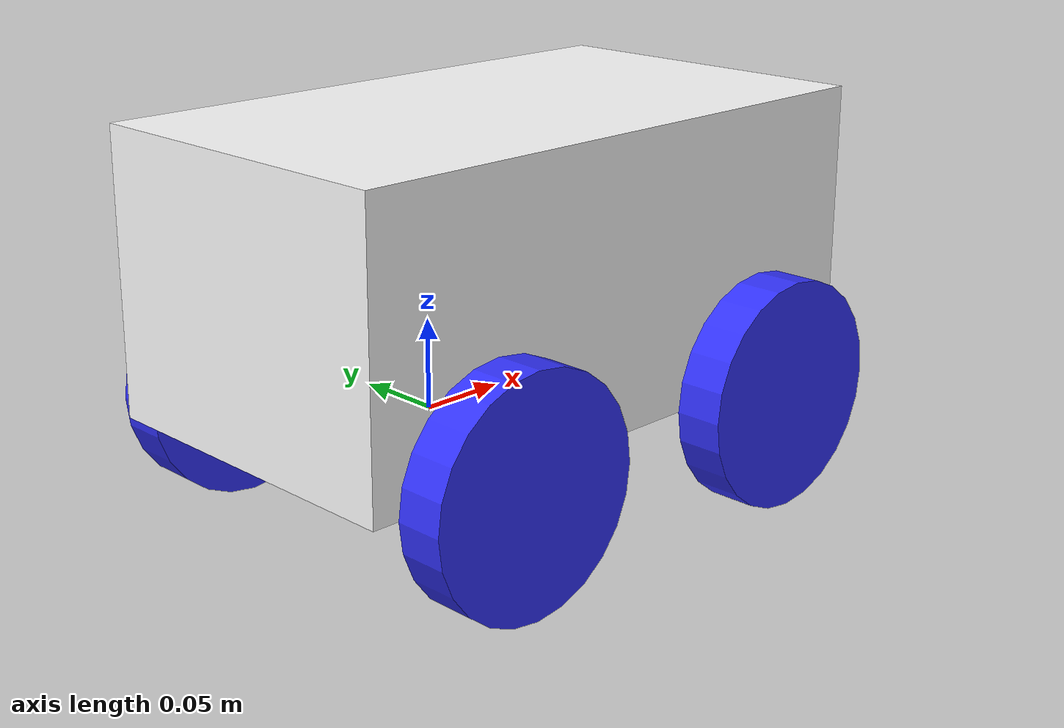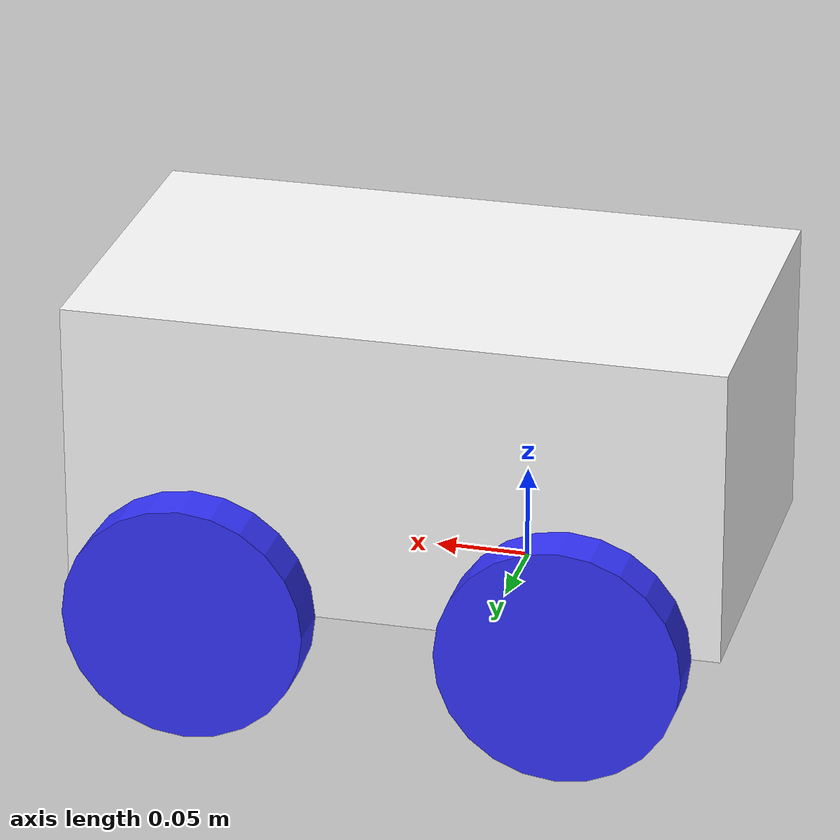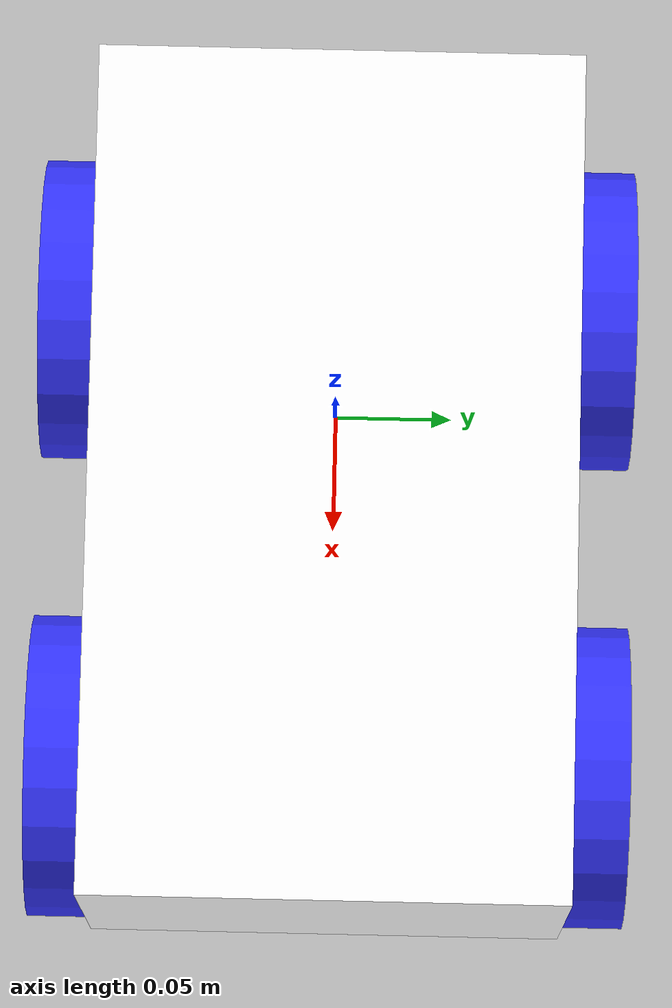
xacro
<?xml version="1.0"?>
<robot xmlns:xacro="http://www.ros.org/wiki/xacro" >
    <xacro:include filename="inertial_macros.xacro" />

    <xacro:property name="chassis_length" value="0.35"/>
    <xacro:property name="chassis_width" value="0.2"/>
    <xacro:property name="chassis_height" value="0.16"/>
    <xacro:property name="chassis_mass" value="5"/>
    <xacro:property name="wheel_radius" value="0.065"/>
    <xacro:property name="wheel_thickness" value="0.027"/>
    <xacro:property name="wheel_mass" value="0.5"/>
    <xacro:property name="wheel_offset_x" value="0.226"/>
    <xacro:property name="wheel_offset_y" value="0.114"/>
    <xacro:property name="wheel_offset_z" value="-0.01"/>
    <xacro:property name="chassis_offset_x" value="0.15"/>
    <xacro:property name="chassis_offset_y" value="0"/>
    <xacro:property name="chassis_offset_z" value="0.08"/>
    <xacro:property name="front_offset_x" value="0.155"/>
    <xacro:property name="back_offset_x" value="0.045"/>
    <material name="white">
        <color rgba="1 1 1 1"/>
    </material>

    <material name="orange">
        <color rgba="1 0.3 0.1 1"/>
    </material>

    <material name="red">
        <color rgba="1 0 0 1"/>
    </material>

    <material name="blue">
        <color rgba="0.2 0.2 1 1"/>
    </material>

    <material name="black">
        <color rgba="0 0 0 1"/>
    </material>

    <material name="gray">
        <color rgba="0.7 0.63 0.66 0"/>
    </material>
    <!--base_link-->
    <link name="base_footprint">

    </link>

    <!-- BASE_FOOTPRINT LINK -->

    <joint name="base_footprint_joint" type="fixed">
        <parent link="base_footprint"/>
        <child link="base_link"/>
        <origin xyz="0 0 0" rpy="0 0 0"/>
    </joint>

    <link name="base_link">
    </link>

    <!--chassy_link-->
    <joint name="chassis_joint" type="fixed">
        <parent link="base_link"/>
        <child link="chassis"/>
        <origin xyz= "-0.1 0 0"/>
    </joint>
    <link name="chassis">
        <visual>
            <origin xyz="${chassis_offset_x} ${chassis_offset_y} ${chassis_offset_z}"/>
            <geometry>
                <box size="${chassis_length} ${chassis_width} ${chassis_height}"/>
            </geometry>
            <material name="white"/>
        </visual>
        <collision>
            <origin xyz="${chassis_offset_x} ${chassis_offset_y} ${chassis_offset_z}"/>
            <geometry>
                <box size="${chassis_length} ${chassis_width} ${chassis_height}"/>
            </geometry>
        </collision>
        <xacro:inertial_box mass="${chassis_mass}" x="${chassis_length}" y="${chassis_width}" z="${chassis_height}">
            <origin xyz="${chassis_length/2} 0 ${chassis_height/2}" rpy="0 0 0"/>
        </xacro:inertial_box>
    </link>
    <gazebo reference="chassis">
        <material>Gazebo/White</material>
    </gazebo>
    <!--LEFT_FRONT_WHEEL_LINK-->

    <joint name="left_front_wheel_joint" type="continuous">
        <parent link="base_link"/>
        <child link="left_front_wheel"/>
        <origin xyz="${front_offset_x} ${wheel_offset_y} 0" rpy="-${pi/2} 0 0"/>
        <axis xyz="0 0 1"/>
    </joint>
    <link name="left_front_wheel">
        <visual>
            <geometry>
                <cylinder radius="${wheel_radius}" length="${wheel_thickness}"/>
            </geometry>
            <material name="blue"/>
        </visual>
        <collision>
            <geometry>
                <cylinder radius="${wheel_radius}" length="${wheel_thickness}"/>
            </geometry>
        </collision>
            <xacro:inertial_cylinder mass="${wheel_mass}" length="${wheel_thickness}" radius="${wheel_radius}">
                <origin xyz="0 0 0" rpy="0 0 0"/>
            </xacro:inertial_cylinder>
    </link>
    <gazebo reference="left_front_wheel">
        <material>Gazebo/Blue</material>
    </gazebo>
    <!--RIGHT_FRONT_WHEEL_LINK-->
    <joint name="right_front_wheel_joint" type="continuous">
        <parent link="base_link"/>
        <child link="right_front_wheel"/>
        <origin xyz="${front_offset_x} ${-wheel_offset_y} 0" rpy="${pi/2} 0 0"/>
        <axis xyz="0 0 -1"/>
    </joint>
    <link name="right_front_wheel">
        <visual>
            <geometry>
                <cylinder radius="${wheel_radius}" length="${wheel_thickness}"/>
            </geometry>
            <material name="blue"/>
        </visual>
        <collision>
            <geometry>
                <cylinder radius="${wheel_radius}" length="${wheel_thickness}"/>
            </geometry>
        </collision>
            <xacro:inertial_cylinder mass="${wheel_mass}" length="${wheel_thickness}" radius="${wheel_radius}">
                <origin xyz="0 0 0" rpy="0 0 0"/>
            </xacro:inertial_cylinder>
    </link>
    <gazebo reference="right_front_wheel">
        <material>Gazebo/Blue</material>
    </gazebo>
    <!--LEFT_BACK_WHEEL_LINK-->
    <joint name="left_back_wheel_joint" type="continuous">
        <parent link="base_link"/>
        <child link="left_back_wheel"/>
        <origin xyz="${-back_offset_x} ${wheel_offset_y} 0" rpy="-${pi/2} 0 0"/>
        <axis xyz="0 0 1"/>
    </joint>
    <link name="left_back_wheel">
        <visual>
            <geometry>
                <cylinder radius="${wheel_radius}" length="${wheel_thickness}"/>
            </geometry>
            <material name="blue"/>
        </visual>
        <collision>
            <geometry>
                <cylinder radius="${wheel_radius}" length="${wheel_thickness}"/>
            </geometry>
        </collision>
            <xacro:inertial_cylinder mass="${wheel_mass}" length="${wheel_thickness}" radius="${wheel_radius}">
                <origin xyz="0 0 0" rpy="0 0 0"/>
            </xacro:inertial_cylinder>
    </link>
    <gazebo reference="left_back_wheel">
        <material>Gazebo/Blue</material>
    </gazebo>
    <!--RIGHT_BACK_WHEEL_LINK-->
    <joint name="right_back_wheel_joint" type="continuous">
        <parent link="base_link"/>
        <child link="right_back_wheel"/>
        <origin xyz="${-back_offset_x} ${-wheel_offset_y} 0" rpy="${pi/2} 0 0"/>
        <axis xyz="0 0 -1"/>
    </joint>
    <link name="right_back_wheel">
        <visual>
            <geometry>
                <cylinder radius="${wheel_radius}" length="${wheel_thickness}"/>
            </geometry>
            <material name="blue"/>
        </visual>
        <collision>
            <geometry>
                <cylinder radius="${wheel_radius}" length="${wheel_thickness}"/>
            </geometry>
        </collision>
            <xacro:inertial_cylinder mass="${wheel_mass}" length="${wheel_thickness}" radius="${wheel_radius}">
                <origin xyz="0 0 0" rpy="0 0 0"/>
            </xacro:inertial_cylinder>
    </link>
    <gazebo reference="right_back_wheel">
        <material>Gazebo/Blue</material>
    </gazebo>
</robot>
